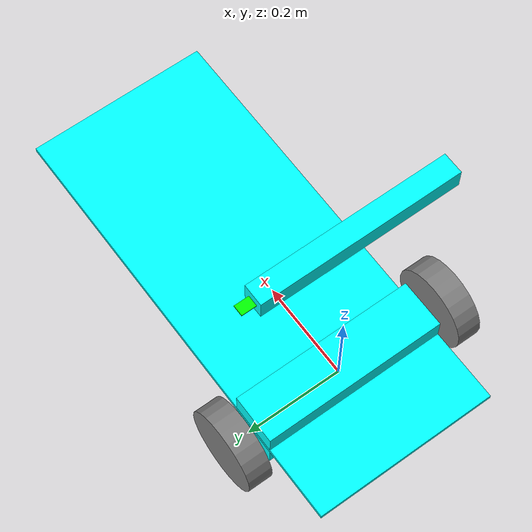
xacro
<?xml version="1.0"?>

<robot name="test" xmlns:xacro="http://ros.org/wiki/xacro">

  <xacro:macro name="cylinder_inertia" params="m r h">
    <inertial>
      <mass value="${m}"/>
      <inertia ixx="${m*(3*r*r+h*h)/12}" ixy = "0" ixz = "0" iyy="${m*(3*r*r+h*h)/12}" iyz = "0" izz="${m*r*r/2}"/>
    </inertial>
  </xacro:macro>

  <xacro:macro name="box_inertia" params="m w h d">
    <inertial>
      <mass value="${m}"/>
      <inertia ixx="${m / 12.0 * (d*d + h*h)}" ixy="0.0" ixz="0.0" iyy="${m / 12.0 * (w*w + h*h)}" iyz="0.0" izz="${m / 12.0 * (w*w + d*d)}"/>
    </inertial>
  </xacro:macro>

 <xacro:macro name="sphere_inertia" params="m r">
    <inertia  ixx="${2*m*r*r/5}" ixy = "0" ixz = "0"
      iyy="${2*m*r*r/5}" iyz = "0"
      izz="${2*m*r*r/5}"
    />
  </xacro:macro>

<!--kilos lengte breedte hoogte-->
<xacro:macro name="box_macro" params="m w h d">
    <visual>
      <geometry>
        <box size="${w} ${h} ${d}"/>
      </geometry>
      <material name="Cyan">
        <color rgba="0 1.0 1.0 1.0"/>
      </material>

    </visual>
    <collision>
      <geometry>
        <box size="${w} ${h} ${d}"/>
      </geometry>
    </collision>

    <inertial>
      <mass value="${m}"/>
      <inertia ixx="${m / 12.0 * (d*d + h*h)}" ixy="0.0" ixz="0.0" iyy="${m / 12.0 * (w*w + h*h)}" iyz="0.0" izz="${m / 12.0 * (w*w + d*d)}"/>
    </inertial>

</xacro:macro>

  <xacro:include filename="materials.urdf"/>

  <xacro:property name="base_width" value="0.38"/>
  <xacro:property name="base_length" value="0.910"/>
  <xacro:property name="base_height" value="0.01"/>
  <xacro:property name="base_xoff" value="0.20"/>
  <xacro:property name="base_zoff" value="0.02"/>

  <xacro:property name="bar_height" value="0.540"/>

  <xacro:property name="wheel_radius" value="0.085"/>
  <xacro:property name="wheel_width" value="0.05"/>
  <xacro:property name="wheel_ygap" value="0.045"/>
  <xacro:property name="wheel_zoff" value="0.0"/>
  <xacro:property name="wheel_xoff" value="0.0"/>

  <xacro:property name="caster_xoff" value="0.14"/>

  <!-- Robot Base -->
  <link name="base_link">
  <!-- middle in between wheels -->
   <xacro:box_macro m="40" w="0.1" h="${base_width}" d="0.1"/>

  </link>

  <link name="box_link">
      <xacro:box_macro m="5" w="${base_length}" h="${base_width}" d="${base_height}"/>
  </link>

    <joint name="box_joint" type="fixed">
      <parent link="base_link"/>
      <child link="box_link"/>
      <origin xyz="${base_length / 2 - base_xoff} 0 0" rpy="0 0 0"/>
    </joint>

 <link name="sensorbar_link">
     <xacro:box_macro m="5" w="0.04" h="${base_width}" d="0.04"/>
  </link>
  <gazebo reference="sensorbar_link">

  </gazebo>

    <joint name="sensorbar_joint" type="fixed">
      <parent link="base_link"/>
      <child link="sensorbar_link"/>
      <origin xyz="0 0 ${bar_height}" rpy="0 0 0"/>
    </joint>

<joint name="gps_joint" type="fixed">
    <origin xyz="0 0.2 0" rpy="0 0 0" />
    <parent link="sensorbar_link" />
    <child link="gps" />
</joint>

<link name="gps">
  <visual>
    <geometry>
    <box size="0.02 0.035 0.002"/>
    </geometry> <material name="Green"/>
  </visual>

  <inertial>
    <mass value="0.001"/> <origin xyz="0 0 0"/>
    <inertia ixx="0.0001" ixy="0.0" ixz="0.0" iyy="0.0001" iyz="0.0" izz="0.0001"/>
  </inertial>
</link>

  <gazebo reference="gps">
    <plugin name="gazebo_ros_gps" filename="libhector_gazebo_ros_gps.so">
      <updateRate>4.0</updateRate>
      <bodyName>gps_link</bodyName>
      <frameId>gps_link</frameId>
      <topicName>gps/fix</topicName>
      <velocityTopicName>gps/fix_velocity</velocityTopicName>
      <referenceLatitude>-30.06022459407145675</referenceLatitude>
      <referenceLongitude>-51.173913575780311191</referenceLongitude>
      <referenceHeading>90</referenceHeading>
      <referenceAltitude>10</referenceAltitude>
      <offset>0 0 0</offset>
      <drift>0.001 0.001 0.001</drift>
      <gaussianNoise>0.05 0.05 0.05</gaussianNoise>
      <velocityDrift>0.001 0.001 0.001</velocityDrift>
      <velocityGaussianNoise>0.5 0.5 0.5</velocityGaussianNoise>
    </plugin>
  </gazebo>

  <xacro:include filename="imu.urdf.xacro" />
        <!-- The following kinect2_xacro defines the _kinect2_rgb_optical_frame
        And includes the fixed joint  -->
        <xacro:imu_sensor parent="sensorbar_link" xyz="0 0 0" rpy="0 0 0">
        </xacro:imu_sensor>

<!--          The following kinect2_xacro defines the _kinect2_rgb_optical_frame
        And includes the fixed joint
        -->

  <!-- Robot Footprint -->

  <link name="robot_footprint">
  <inertial>
         <mass value="10"/>
         <inertia ixx="0.4" ixy="0.0" ixz="0.0" iyy="0.4" iyz="0.0" izz="0.2"/>
   </inertial>

  </link>

  <gazebo reference="robot_footprint">
    <material>Gazebo/Orange</material>
  </gazebo>

  <joint name="base_joint" type="fixed">
    <parent link="base_link"/>
    <child link="robot_footprint"/>
    <origin xyz="0.0 0.0 ${-(wheel_radius+wheel_zoff)}" rpy="0 0 0"/>
  </joint>

    <!-- Wheels -->
  <xacro:macro name="wheel" params="prefix x_reflect y_reflect">
    <link name="${prefix}_link">
      <collision>
        <origin xyz="0 0 0" rpy="${pi/2} 0 0"/>
        <geometry>
            <cylinder radius="${wheel_radius}" length="${wheel_width}"/>
        </geometry>
      </collision>
      <visual>
        <origin xyz="0 0 0" rpy="${pi/2} 0 0"/>
        <geometry>
            <cylinder radius="${wheel_radius}" length="${wheel_width}"/>
        </geometry>
        <material name="Gray">  <color rgba="0.5 0.5 0.5 1.0"/>    </material>
      </visual>
    <xacro:cylinder_inertia m="1" r="${wheel_radius}" h="${wheel_width}"/>

    </link>

    <joint name="${prefix}" type="continuous">
      <parent link="base_link"/>
      <child link="${prefix}_link"/>
      <origin xyz="${x_reflect*wheel_xoff} ${y_reflect*(base_width/2+wheel_ygap)} ${-wheel_zoff}" rpy="0 0 0"/>
      <axis xyz="0 1 0"/>
    </joint>
  </xacro:macro>

  <xacro:wheel prefix="left_wheel" x_reflect="-1" y_reflect="1" />
  <xacro:wheel prefix="right_wheel" x_reflect="-1" y_reflect="-1" />

<!--Gazebo Differential Drive Plugin-->
<gazebo>
  <plugin name="differential_drive_controller" filename="libgazebo_ros_diff_drive.so">
    <alwaysOn>true</alwaysOn>
    <legacyMode>false</legacyMode>
    <updateRate>40</updateRate>
    <leftJoint>left_wheel_joint</leftJoint>
    <rightJoint>right_wheel_joint</rightJoint>
    <wheelSeparation>${base_width + wheel_ygap}</wheelSeparation>
    <wheelDiameter>${wheel_radius * 2}</wheelDiameter>
    <torque>200</torque>
    <commandTopic>cmd_vel</commandTopic>
    <odometryTopic>odom</odometryTopic>
    <odometryFrame>odom</odometryFrame>
    <robotBaseFrame>base_link</robotBaseFrame>
  </plugin>
</gazebo>

    <!-- Caster Wheel -->

  <link name="front_caster">

    <visual>
      <geometry>
        <sphere radius="${wheel_radius / 2}"/>
      </geometry>
      <material name="Cyan">
        <color rgba="0 1.0 1.0 1.0"/>
      </material>
    </visual>

    <collision>
      <geometry>
        <sphere radius="${wheel_radius / 2}"/>
      </geometry>
    </collision>

    <xacro:sphere_inertia m="10.3" r="${wheel_radius / 2}"/>

  </link>

  <joint name="caster_joint" type="fixed">
    <parent link="base_link"/>
    <child link="front_caster"/>
    <origin xyz="${base_length - base_xoff - 0.2} 0.0 ${0 - (wheel_radius / 2)}" rpy="0 0 0"/>
  </joint>

      <gazebo>
        <plugin name="gazebo_ros_control" filename="libgazebo_ros_control.so">
          <robotNamespace>/</robotNamespace>
        </plugin>
      </gazebo>

</robot>

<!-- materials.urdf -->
<robot>
        <material name="Cyan">
            <color rgba="0 1.0 1.0 1.0"/>
        </material>

  <material name="Green">
    <color rgba="0.0 1.0 0.0 1.0"/>
  </material>

  <material name="Yellow">
    <color rgba="1.0 1.0 0.0 1.0"/>
  </material>

  <material name="LightYellow">
    <color rgba="1.0 1.0 0.6 1.0"/>
  </material>

  <material name="Blue">
    <color rgba="0.0 0.0 1.0 1.0"/>
  </material>

  <material name="LightBlue">
    <color rgba="0.6 0.79 1.0 1.0"/>
  </material>

  <material name="DarkGrey">
    <color rgba="0.31 0.31 0.31 1.0"/>
  </material>

  <material name="LightGrey">
    <color rgba="0.83 0.83 0.83 1.0"/>
  </material>

  <material name="MediumGrey">
    <color rgba="0.5 0.5 0.5 1.0"/>
  </material>

  <material name="Black">
    <color rgba="0.0 0.0 0.0 1.0"/>
  </material>

  <material name="Red">
    <color rgba="1.0 0.0 0.0 1.0"/>
  </material>

  <material name="Orange">
    <color rgba="1.0 0.65 0.0 1.0"/>
  </material>
</robot>

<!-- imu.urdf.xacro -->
<robot xmlns:xacro="http://www.ros.org/wiki/xacro" name="imu">

<xacro:macro name="imu_sensor" params="xyz rpy parent">
    <joint name="imu_sensor_joint" type="fixed">
        <axis xyz="0 0 1" />
        <origin xyz="${xyz}" rpy="${rpy}"/>
        <parent link="${parent}"/>
        <child link="imu_sensor_link"/>
    </joint>

    <link name="imu_sensor_link">
        <collision>
            <origin xyz="0 0 0" rpy="0 0 0"/>
            <geometry>
                <box size="0.02 0.02 0.02"/>
            </geometry>
        </collision>
        <visual>
            <origin xyz="0 0 0" rpy="0 0 0"/>
            <geometry>
                <box size="0.02 0.02 0.02"/>
            </geometry>
            <material name="Red"/>
        </visual>
        <inertial>
            <mass value="0.001" />
            <origin xyz="0 0 0" rpy="0 0 0"/>
            <inertia ixx="0.00000015" ixy="0" ixz="0" iyy="0.00000015" iyz="0" izz="0.00000015" />
        </inertial>
    </link>

    <gazebo reference="imu_sensor_link">
        <gravity>true</gravity>
        <sensor name='imu_sensor' type='imu'>
            <always_on>1</always_on>
            <update_rate>1000</update_rate>
            <visualize>1</visualize>
            <topic>__default_topic__</topic>
            <plugin name='imu_plugin' filename='libgazebo_ros_imu_sensor.so'>
                <topicName>imu/data</topicName>
                <bodyName>imu_sensor_link</bodyName>
                <frameName>imu_sensor_link</frameName>
                <updateRateHZ>32.0</updateRateHZ>
                <gaussianNoise>0.0</gaussianNoise>
                <xyzOffset>0 0 0</xyzOffset>
                <rpyOffset>0 0 0</rpyOffset>
            </plugin>
            <pose>0 0 0 0 0 0</pose>
        </sensor>
    </gazebo>

</xacro:macro>

</robot>
